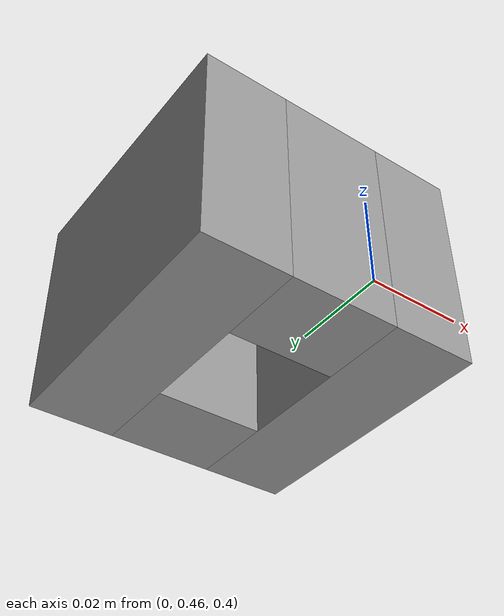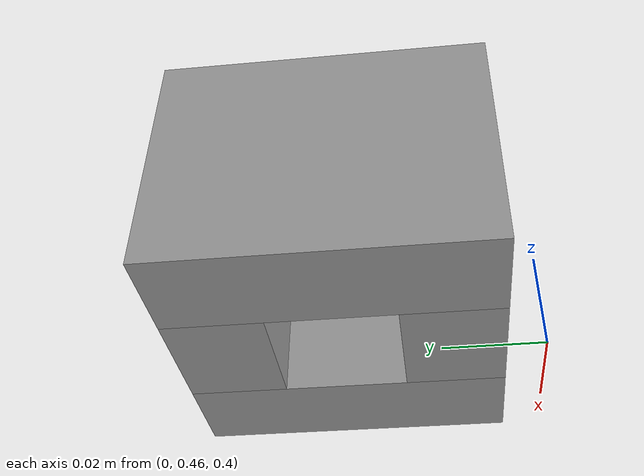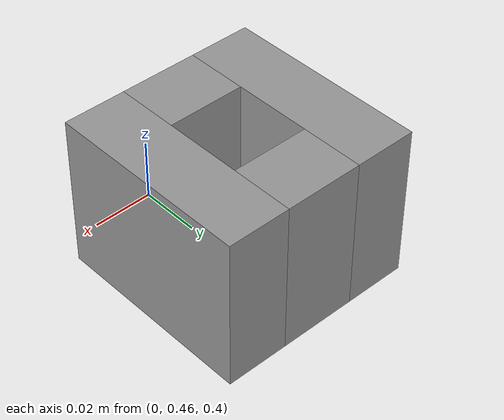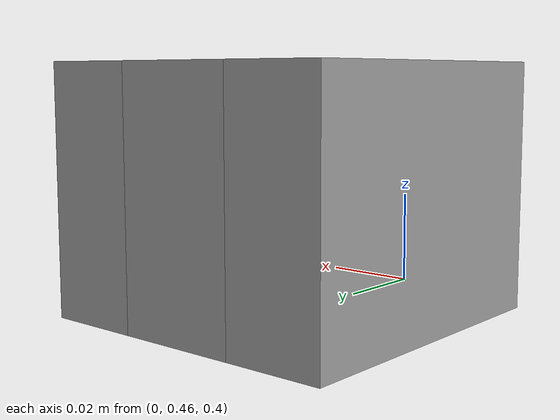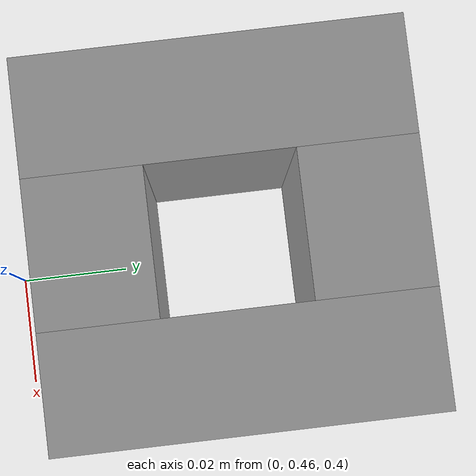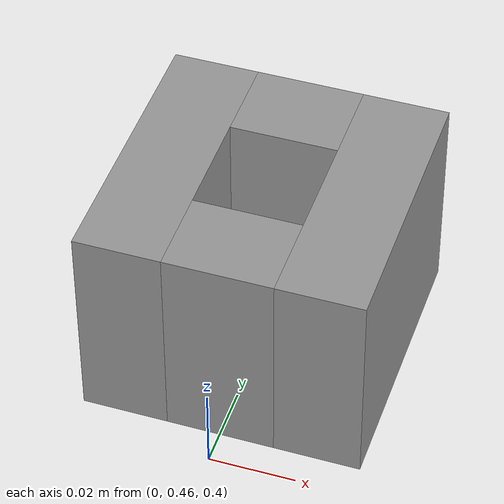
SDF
<?xml version='1.0'?>
<sdf version='1.6'>
  <model name='hole'>
    <link name='hole_link1'>
      <inertial>
        <pose>0.0225 0.5 0.425 0 -0 0</pose>
        <mass>0.5</mass>
        <inertia>
          <ixx>0.001</ixx>
          <iyy>0.001</iyy>
          <izz>0.001</izz>
        </inertia>
      </inertial>
      <self_collide>0</self_collide>
      <enable_wind>0</enable_wind>
      <kinematic>0</kinematic>
      <visual name='hole_visual1'>
        <pose>0.0225 0.5 0.425 0 -0 0</pose>
        <geometry>
          <box>
            <size>0.02 0.065 0.05</size>
          </box>
        </geometry>
        <material>
          <script>
            <name>Gazebo/Grey</name>
            <uri>file://media/materials/scripts/gazebo.material</uri>
          </script>
          <shader type='pixel'/>
        </material>
        <transparency>0</transparency>
        <cast_shadows>1</cast_shadows>
      </visual>
      <collision name='hole_collision1'>
        <laser_retro>0</laser_retro>
        <max_contacts>10</max_contacts>
        <pose>0.0225 0.5 0.425 0 -0 0</pose>
        <geometry>
          <box>
            <size>0.02 0.065 0.05</size>
          </box>
        </geometry>
      </collision>
    </link>

    <link name='hole_link2'>
      <inertial>
        <pose>-0.0225 0.5 0.425 0 -0 0</pose>
        <mass>0.5</mass>
        <inertia>
          <ixx>0.001</ixx>
          <iyy>0.001</iyy>
          <izz>0.001</izz>
        </inertia>
      </inertial>
      <self_collide>0</self_collide>
      <enable_wind>0</enable_wind>
      <kinematic>0</kinematic>
      <visual name='hole_visual2'>
        <pose>-0.0225 0.5 0.425 0 -0 0</pose>
        <geometry>
          <box>
            <size>0.02 0.065 0.05</size>
          </box>
        </geometry>
        <material>
          <script>
            <name>Gazebo/Grey</name>
            <uri>file://media/materials/scripts/gazebo.material</uri>
          </script>
          <shader type='pixel'/>
        </material>
        <transparency>0</transparency>
        <cast_shadows>1</cast_shadows>
      </visual>
      <collision name='hole_collision2'>
        <laser_retro>0</laser_retro>
        <max_contacts>10</max_contacts>
        <pose>-0.0225 0.5 0.425 0 -0 0</pose>
        <geometry>
          <box>
            <size>0.02 0.065 0.05</size>
          </box>
        </geometry>
      </collision>
    </link>

    <link name='hole_link3'>
      <inertial>
        <pose>0 0.4775 0.425 0 -0 0</pose>
        <mass>0.5</mass>
        <inertia>
          <ixx>0.001</ixx>
          <iyy>0.001</iyy>
          <izz>0.001</izz>
        </inertia>
      </inertial>
      <self_collide>0</self_collide>
      <enable_wind>0</enable_wind>
      <kinematic>0</kinematic>
      <visual name='hole_visual3'>
        <pose>0 0.4775 0.425 0 -0 0</pose>
        <geometry>
          <box>
            <size>0.025 0.02 0.05</size>
          </box>
        </geometry>
        <material>
          <script>
            <name>Gazebo/Grey</name>
            <uri>file://media/materials/scripts/gazebo.material</uri>
          </script>
          <shader type='pixel'/>
        </material>
        <transparency>0</transparency>
        <cast_shadows>1</cast_shadows>
      </visual>
      <collision name='hole_collision3'>
        <laser_retro>0</laser_retro>
        <max_contacts>10</max_contacts>
        <pose>0 0.4775 0.425 0 -0 0</pose>
        <geometry>
          <box>
            <size>0.025 0.02 0.05</size>
          </box>
        </geometry>
      </collision>
    </link>

    <link name='hole_link4'>
      <inertial>
        <pose>0 0.5225 0.425 0 -0 0</pose>
        <mass>0.5</mass>
        <inertia>
          <ixx>0.001</ixx>
          <iyy>0.001</iyy>
          <izz>0.001</izz>
        </inertia>
      </inertial>
      <self_collide>0</self_collide>
      <enable_wind>0</enable_wind>
      <kinematic>0</kinematic>
      <visual name='hole_visual4'>
        <pose>0 0.5225 0.425 0 -0 0</pose>
        <geometry>
          <box>
            <size>0.025 0.02 0.05</size>
          </box>
        </geometry>
        <material>
          <script>
            <name>Gazebo/Grey</name>
            <uri>file://media/materials/scripts/gazebo.material</uri>
          </script>
          <shader type='pixel'/>
        </material>
        <transparency>0</transparency>
        <cast_shadows>1</cast_shadows>
      </visual>
      <collision name='hole_collision4'>
        <laser_retro>0</laser_retro>
        <max_contacts>10</max_contacts>
        <pose>0 0.5225 0.425 0 -0 0</pose>
        <geometry>
          <box>
            <size>0.025 0.02 0.05</size>
          </box>
        </geometry>
      </collision>
    </link>

    <static>1</static>
    <allow_auto_disable>1</allow_auto_disable>
  </model>
</sdf>
